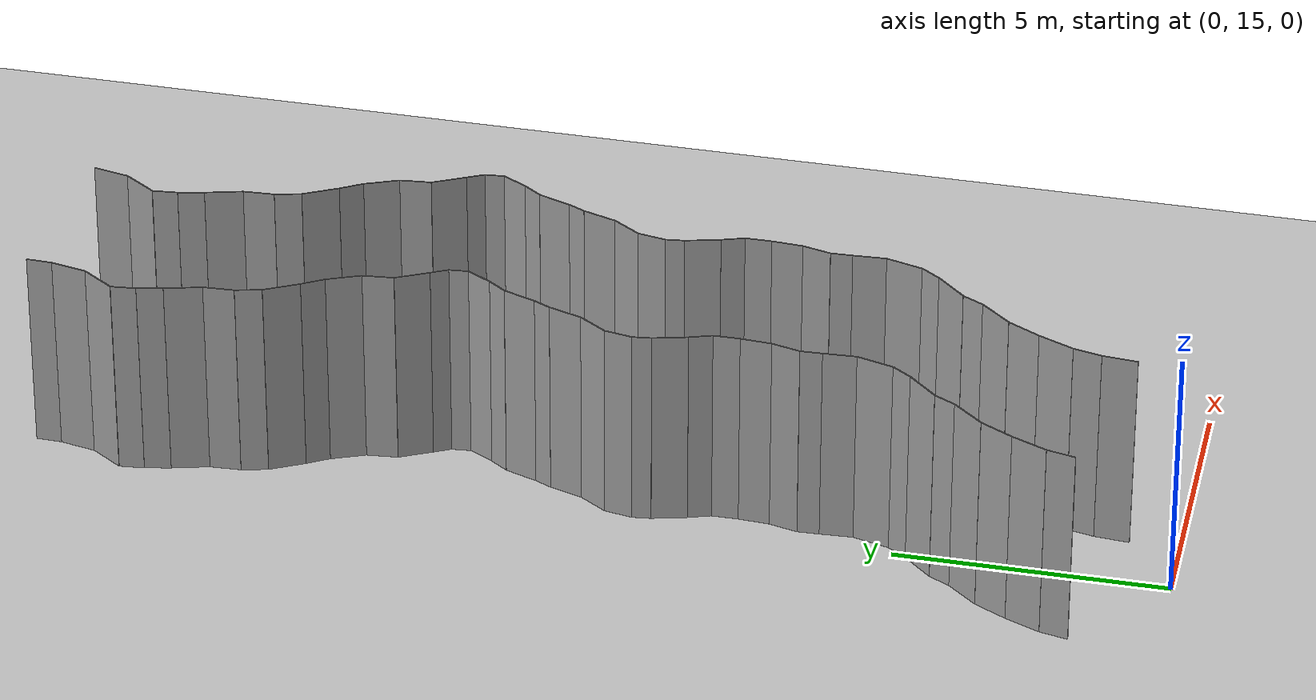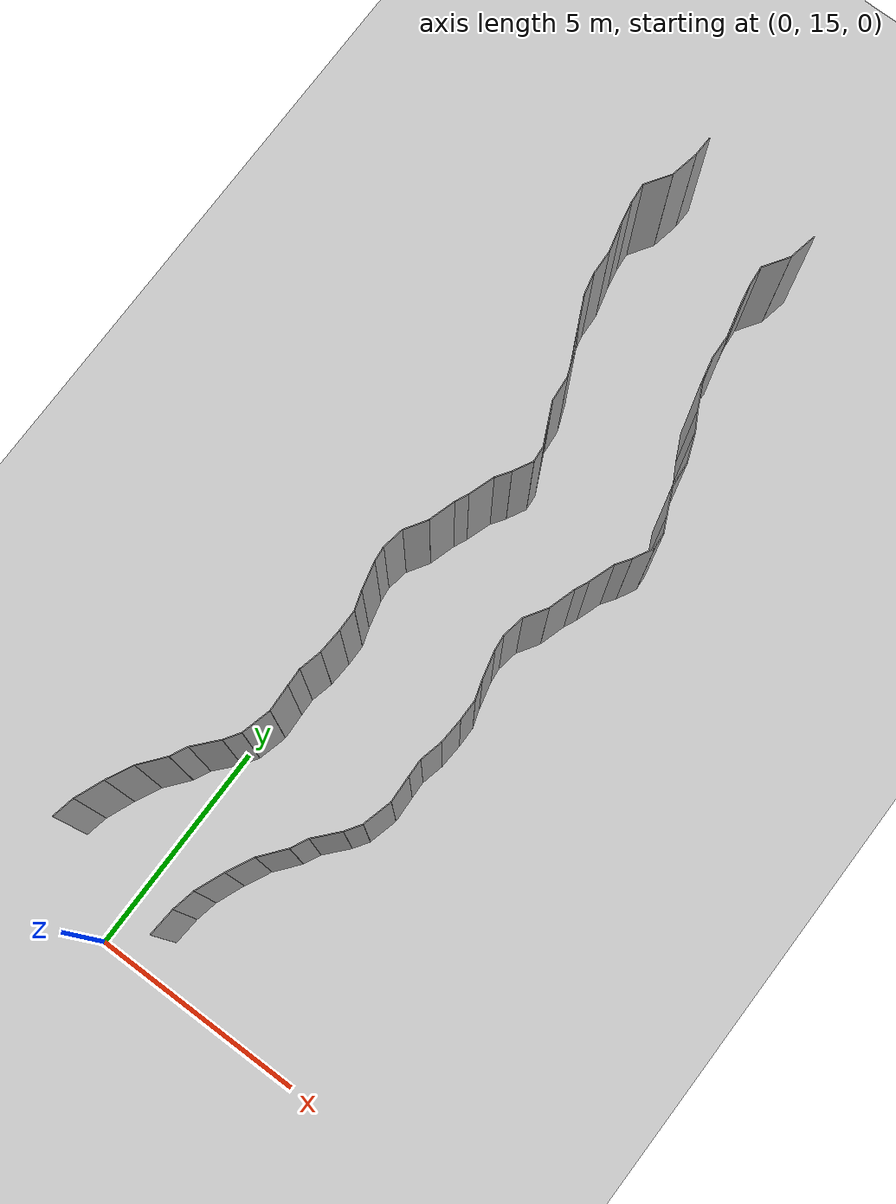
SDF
<sdf version="1.6">
 <world name="default">
  <model name="ground_plane">
   <static>1</static>
   <link name="link">
    <collision name="collision">
     <geometry><plane><normal>0 0 1</normal><size>200 200</size></plane></geometry>
     <surface><friction><ode><mu>100</mu><mu2>50</mu2></ode></friction></surface>
    </collision>
    <visual name="visual">
     <cast_shadows>0</cast_shadows>
     <geometry><plane><normal>0 0 1</normal><size>200 200</size></plane></geometry>
     <material>
      <script><uri>file://media/materials/scripts/gazebo.material</uri><name>Gazebo/Grey</name></script>
     </material>
    </visual>
   </link>
   <pose>0 100 0 0 -0 0</pose>
  </model>
  <model name="wall_73">
   <static>1</static>
   <pose>1.236619436810946 16.24686806776108 2 0 0 -0.07662111483931414</pose>
   <link name="link">
    <collision name="collision"><geometry><box><size>0.02 0.652921871732 4</size></box></geometry></collision>
    <visual name="visual">
     <material>
      <script><name>Gazebo/Grey</name><uri>file://media/materials/scripts/gazebo.material</uri></script>
     </material>
     <geometry><box><size>0.02 0.652921871732 4</size></box></geometry>
    </visual>
   </link>
  </model>
  <model name="wall_74">
   <static>1</static>
   <pose>-1.6850619614783182 16.833717161056516 2 0 0 -0.20129269610426137</pose>
   <link name="link">
    <collision name="collision"><geometry><box><size>0.02 0.533463149164 4</size></box></geometry></collision>
    <visual name="visual">
     <material>
      <script><name>Gazebo/Grey</name><uri>file://media/materials/scripts/gazebo.material</uri></script>
     </material>
     <geometry><box><size>0.02 0.533463149164 4</size></box></geometry>
    </visual>
   </link>
  </model>
  <model name="wall_75">
   <static>1</static>
   <pose>1.3149380385216818 16.833717161056516 2 0 0 -0.20129269610426137</pose>
   <link name="link">
    <collision name="collision"><geometry><box><size>0.02 0.533463149164 4</size></box></geometry></collision>
    <visual name="visual">
     <material>
      <script><name>Gazebo/Grey</name><uri>file://media/materials/scripts/gazebo.material</uri></script>
     </material>
     <geometry><box><size>0.02 0.533463149164 4</size></box></geometry>
    </visual>
   </link>
  </model>
  <model name="wall_76">
   <static>1</static>
   <pose>-1.5027451103024327 17.417432504195393 2 0 0 -0.3806129050042537</pose>
   <link name="link">
    <collision name="collision"><geometry><box><size>0.02 0.694434451404 4</size></box></geometry></collision>
    <visual name="visual">
     <material>
      <script><name>Gazebo/Grey</name><uri>file://media/materials/scripts/gazebo.material</uri></script>
     </material>
     <geometry><box><size>0.02 0.694434451404 4</size></box></geometry>
    </visual>
   </link>
  </model>
  <model name="wall_77">
   <static>1</static>
   <pose>1.4972548896975673 17.417432504195393 2 0 0 -0.3806129050042537</pose>
   <link name="link">
    <collision name="collision"><geometry><box><size>0.02 0.694434451404 4</size></box></geometry></collision>
    <visual name="visual">
     <material>
      <script><name>Gazebo/Grey</name><uri>file://media/materials/scripts/gazebo.material</uri></script>
     </material>
     <geometry><box><size>0.02 0.694434451404 4</size></box></geometry>
    </visual>
   </link>
  </model>
  <model name="wall_78">
   <static>1</static>
   <pose>-1.2288939563879646 18.032982774155506 2 0 0 -0.4589243876462619</pose>
   <link name="link">
    <collision name="collision"><geometry><box><size>0.02 0.654035165045 4</size></box></geometry></collision>
    <visual name="visual">
     <material>
      <script><name>Gazebo/Grey</name><uri>file://media/materials/scripts/gazebo.material</uri></script>
     </material>
     <geometry><box><size>0.02 0.654035165045 4</size></box></geometry>
    </visual>
   </link>
  </model>
  <model name="wall_79">
   <static>1</static>
   <pose>1.7711060436120354 18.032982774155506 2 0 0 -0.4589243876462619</pose>
   <link name="link">
    <collision name="collision"><geometry><box><size>0.02 0.654035165045 4</size></box></geometry></collision>
    <visual name="visual">
     <material>
      <script><name>Gazebo/Grey</name><uri>file://media/materials/scripts/gazebo.material</uri></script>
     </material>
     <geometry><box><size>0.02 0.654035165045 4</size></box></geometry>
    </visual>
   </link>
  </model>
  <model name="wall_80">
   <static>1</static>
   <pose>-0.8682462791823895 18.59495210912304 2 0 0 -0.676447640594913</pose>
   <link name="link">
    <collision name="collision"><geometry><box><size>0.02 0.689376525945 4</size></box></geometry></collision>
    <visual name="visual">
     <material>
      <script><name>Gazebo/Grey</name><uri>file://media/materials/scripts/gazebo.material</uri></script>
     </material>
     <geometry><box><size>0.02 0.689376525945 4</size></box></geometry>
    </visual>
   </link>
  </model>
  <model name="wall_81">
   <static>1</static>
   <pose>2.1317537208176107 18.59495210912304 2 0 0 -0.676447640594913</pose>
   <link name="link">
    <collision name="collision"><geometry><box><size>0.02 0.689376525945 4</size></box></geometry></collision>
    <visual name="visual">
     <material>
      <script><name>Gazebo/Grey</name><uri>file://media/materials/scripts/gazebo.material</uri></script>
     </material>
     <geometry><box><size>0.02 0.689376525945 4</size></box></geometry>
    </visual>
   </link>
  </model>
  <model name="wall_82">
   <static>1</static>
   <pose>-0.5602530816631973 19.05375764423347 2 0 0 -0.45179214773856896</pose>
   <link name="link">
    <collision name="collision"><geometry><box><size>0.02 0.422416941302 4</size></box></geometry></collision>
    <visual name="visual">
     <material>
      <script><name>Gazebo/Grey</name><uri>file://media/materials/scripts/gazebo.material</uri></script>
     </material>
     <geometry><box><size>0.02 0.422416941302 4</size></box></geometry>
    </visual>
   </link>
  </model>
  <model name="wall_83">
   <static>1</static>
   <pose>2.4397469183368026 19.05375764423347 2 0 0 -0.45179214773856896</pose>
   <link name="link">
    <collision name="collision"><geometry><box><size>0.02 0.422416941302 4</size></box></geometry></collision>
    <visual name="visual">
     <material>
      <script><name>Gazebo/Grey</name><uri>file://media/materials/scripts/gazebo.material</uri></script>
     </material>
     <geometry><box><size>0.02 0.422416941302 4</size></box></geometry>
    </visual>
   </link>
  </model>
  <model name="wall_84">
   <static>1</static>
   <pose>-0.24339477270567478 19.49897368563384 2 0 0 -0.7218185902400076</pose>
   <link name="link">
    <collision name="collision"><geometry><box><size>0.02 0.679981665009 4</size></box></geometry></collision>
    <visual name="visual">
     <material>
      <script><name>Gazebo/Grey</name><uri>file://media/materials/scripts/gazebo.material</uri></script>
     </material>
     <geometry><box><size>0.02 0.679981665009 4</size></box></geometry>
    </visual>
   </link>
  </model>
  <model name="wall_85">
   <static>1</static>
   <pose>2.756605227294325 19.49897368563384 2 0 0 -0.7218185902400076</pose>
   <link name="link">
    <collision name="collision"><geometry><box><size>0.02 0.679981665009 4</size></box></geometry></collision>
    <visual name="visual">
     <material>
      <script><name>Gazebo/Grey</name><uri>file://media/materials/scripts/gazebo.material</uri></script>
     </material>
     <geometry><box><size>0.02 0.679981665009 4</size></box></geometry>
    </visual>
   </link>
  </model>
  <model name="wall_86">
   <static>1</static>
   <pose>0.09290963431255042 19.926337376304538 2 0 0 -0.575345957879111</pose>
   <link name="link">
    <collision name="collision"><geometry><box><size>0.02 0.410402656872 4</size></box></geometry></collision>
    <visual name="visual">
     <material>
      <script><name>Gazebo/Grey</name><uri>file://media/materials/scripts/gazebo.material</uri></script>
     </material>
     <geometry><box><size>0.02 0.410402656872 4</size></box></geometry>
    </visual>
   </link>
  </model>
  <model name="wall_87">
   <static>1</static>
   <pose>3.0929096343125506 19.926337376304538 2 0 0 -0.575345957879111</pose>
   <link name="link">
    <collision name="collision"><geometry><box><size>0.02 0.410402656872 4</size></box></geometry></collision>
    <visual name="visual">
     <material>
      <script><name>Gazebo/Grey</name><uri>file://media/materials/scripts/gazebo.material</uri></script>
     </material>
     <geometry><box><size>0.02 0.410402656872 4</size></box></geometry>
    </visual>
   </link>
  </model>
  <model name="wall_88">
   <static>1</static>
   <pose>0.2908948593603694 20.435092098052486 2 0 0 -0.2510721438512877</pose>
   <link name="link">
    <collision name="collision"><geometry><box><size>0.02 0.69496957902 4</size></box></geometry></collision>
    <visual name="visual">
     <material>
      <script><name>Gazebo/Grey</name><uri>file://media/materials/scripts/gazebo.material</uri></script>
     </material>
     <geometry><box><size>0.02 0.69496957902 4</size></box></geometry>
    </visual>
   </link>
  </model>
  <model name="wall_89">
   <static>1</static>
   <pose>3.2908948593603693 20.435092098052486 2 0 0 -0.2510721438512877</pose>
   <link name="link">
    <collision name="collision"><geometry><box><size>0.02 0.69496957902 4</size></box></geometry></collision>
    <visual name="visual">
     <material>
      <script><name>Gazebo/Grey</name><uri>file://media/materials/scripts/gazebo.material</uri></script>
     </material>
     <geometry><box><size>0.02 0.69496957902 4</size></box></geometry>
    </visual>
   </link>
  </model>
  <model name="wall_90">
   <static>1</static>
   <pose>0.36312713648674444 21.076874312848084 2 0 0 0.04616022695927666</pose>
   <link name="link">
    <collision name="collision"><geometry><box><size>0.02 0.611035372541 4</size></box></geometry></collision>
    <visual name="visual">
     <material>
      <script><name>Gazebo/Grey</name><uri>file://media/materials/scripts/gazebo.material</uri></script>
     </material>
     <geometry><box><size>0.02 0.611035372541 4</size></box></geometry>
    </visual>
   </link>
  </model>
  <model name="wall_91">
   <static>1</static>
   <pose>3.3631271364867446 21.076874312848084 2 0 0 0.04616022695927666</pose>
   <link name="link">
    <collision name="collision"><geometry><box><size>0.02 0.611035372541 4</size></box></geometry></collision>
    <visual name="visual">
     <material>
      <script><name>Gazebo/Grey</name><uri>file://media/materials/scripts/gazebo.material</uri></script>
     </material>
     <geometry><box><size>0.02 0.611035372541 4</size></box></geometry>
    </visual>
   </link>
  </model>
  <model name="wall_92">
   <static>1</static>
   <pose>0.34215950551542296 21.582013331725417 2 0 0 0.03434499914582238</pose>
   <link name="link">
    <collision name="collision"><geometry><box><size>0.02 0.400129505475 4</size></box></geometry></collision>
    <visual name="visual">
     <material>
      <script><name>Gazebo/Grey</name><uri>file://media/materials/scripts/gazebo.material</uri></script>
     </material>
     <geometry><box><size>0.02 0.400129505475 4</size></box></geometry>
    </visual>
   </link>
  </model>
  <model name="wall_93">
   <static>1</static>
   <pose>3.342159505515423 21.582013331725417 2 0 0 0.03434499914582238</pose>
   <link name="link">
    <collision name="collision"><geometry><box><size>0.02 0.400129505475 4</size></box></geometry></collision>
    <visual name="visual">
     <material>
      <script><name>Gazebo/Grey</name><uri>file://media/materials/scripts/gazebo.material</uri></script>
     </material>
     <geometry><box><size>0.02 0.400129505475 4</size></box></geometry>
    </visual>
   </link>
  </model>
  <model name="wall_94">
   <static>1</static>
   <pose>0.39580625724243496 22.043670130056444 2 0 0 -0.22724140612445018</pose>
   <link name="link">
    <collision name="collision"><geometry><box><size>0.02 0.537231427644 4</size></box></geometry></collision>
    <visual name="visual">
     <material>
      <script><name>Gazebo/Grey</name><uri>file://media/materials/scripts/gazebo.material</uri></script>
     </material>
     <geometry><box><size>0.02 0.537231427644 4</size></box></geometry>
    </visual>
   </link>
  </model>
  <model name="wall_95">
   <static>1</static>
   <pose>3.395806257242435 22.043670130056444 2 0 0 -0.22724140612445018</pose>
   <link name="link">
    <collision name="collision"><geometry><box><size>0.02 0.537231427644 4</size></box></geometry></collision>
    <visual name="visual">
     <material>
      <script><name>Gazebo/Grey</name><uri>file://media/materials/scripts/gazebo.material</uri></script>
     </material>
     <geometry><box><size>0.02 0.537231427644 4</size></box></geometry>
    </visual>
   </link>
  </model>
  <model name="wall_96">
   <static>1</static>
   <pose>0.47292743298358336 22.59151135520909 2 0 0 -0.05796623920278372</pose>
   <link name="link">
    <collision name="collision"><geometry><box><size>0.02 0.573225163115 4</size></box></geometry></collision>
    <visual name="visual">
     <material>
      <script><name>Gazebo/Grey</name><uri>file://media/materials/scripts/gazebo.material</uri></script>
     </material>
     <geometry><box><size>0.02 0.573225163115 4</size></box></geometry>
    </visual>
   </link>
  </model>
  <model name="wall_97">
   <static>1</static>
   <pose>3.4729274329835835 22.59151135520909 2 0 0 -0.05796623920278372</pose>
   <link name="link">
    <collision name="collision"><geometry><box><size>0.02 0.573225163115 4</size></box></geometry></collision>
    <visual name="visual">
     <material>
      <script><name>Gazebo/Grey</name><uri>file://media/materials/scripts/gazebo.material</uri></script>
     </material>
     <geometry><box><size>0.02 0.573225163115 4</size></box></geometry>
    </visual>
   </link>
  </model>
  <model name="wall_98">
   <static>1</static>
   <pose>0.4869234868872384 23.121474311820876 2 0 0 0.010697530162599417</pose>
   <link name="link">
    <collision name="collision"><geometry><box><size>0.02 0.487691427826 4</size></box></geometry></collision>
    <visual name="visual">
     <material>
      <script><name>Gazebo/Grey</name><uri>file://media/materials/scripts/gazebo.material</uri></script>
     </material>
     <geometry><box><size>0.02 0.487691427826 4</size></box></geometry>
    </visual>
   </link>
  </model>
  <model name="wall_99">
   <static>1</static>
   <pose>3.4869234868872385 23.121474311820876 2 0 0 0.010697530162599417</pose>
   <link name="link">
    <collision name="collision"><geometry><box><size>0.02 0.487691427826 4</size></box></geometry></collision>
    <visual name="visual">
     <material>
      <script><name>Gazebo/Grey</name><uri>file://media/materials/scripts/gazebo.material</uri></script>
     </material>
     <geometry><box><size>0.02 0.487691427826 4</size></box></geometry>
    </visual>
   </link>
  </model>
  <model name="wall_100">
   <static>1</static>
   <pose>0.41763871543381453 23.57182953600689 2 0 0 0.3122868351081051</pose>
   <link name="link">
    <collision name="collision"><geometry><box><size>0.02 0.434039934479 4</size></box></geometry></collision>
    <visual name="visual">
     <material>
      <script><name>Gazebo/Grey</name><uri>file://media/materials/scripts/gazebo.material</uri></script>
     </material>
     <geometry><box><size>0.02 0.434039934479 4</size></box></geometry>
    </visual>
   </link>
  </model>
  <model name="wall_101">
   <static>1</static>
   <pose>3.4176387154338146 23.57182953600689 2 0 0 0.3122868351081051</pose>
   <link name="link">
    <collision name="collision"><geometry><box><size>0.02 0.434039934479 4</size></box></geometry></collision>
    <visual name="visual">
     <material>
      <script><name>Gazebo/Grey</name><uri>file://media/materials/scripts/gazebo.material</uri></script>
     </material>
     <geometry><box><size>0.02 0.434039934479 4</size></box></geometry>
    </visual>
   </link>
  </model>
  <model name="wall_102">
   <static>1</static>
   <pose>0.27321010519076544 24.09410271863403 2 0 0 0.24144306569000376</pose>
   <link name="link">
    <collision name="collision"><geometry><box><size>0.02 0.650363933224 4</size></box></geometry></collision>
    <visual name="visual">
     <material>
      <script><name>Gazebo/Grey</name><uri>file://media/materials/scripts/gazebo.material</uri></script>
     </material>
     <geometry><box><size>0.02 0.650363933224 4</size></box></geometry>
    </visual>
   </link>
  </model>
  <model name="wall_103">
   <static>1</static>
   <pose>3.2732101051907656 24.09410271863403 2 0 0 0.24144306569000376</pose>
   <link name="link">
    <collision name="collision"><geometry><box><size>0.02 0.650363933224 4</size></box></geometry></collision>
    <visual name="visual">
     <material>
      <script><name>Gazebo/Grey</name><uri>file://media/materials/scripts/gazebo.material</uri></script>
     </material>
     <geometry><box><size>0.02 0.650363933224 4</size></box></geometry>
    </visual>
   </link>
  </model>
  <model name="wall_104">
   <static>1</static>
   <pose>0.1770207866452207 24.581464356746835 2 0 0 0.10702366258992727</pose>
   <link name="link">
    <collision name="collision"><geometry><box><size>0.02 0.345198915252 4</size></box></geometry></collision>
    <visual name="visual">
     <material>
      <script><name>Gazebo/Grey</name><uri>file://media/materials/scripts/gazebo.material</uri></script>
     </material>
     <geometry><box><size>0.02 0.345198915252 4</size></box></geometry>
    </visual>
   </link>
  </model>
  <model name="wall_105">
   <static>1</static>
   <pose>3.1770207866452207 24.581464356746835 2 0 0 0.10702366258992727</pose>
   <link name="link">
    <collision name="collision"><geometry><box><size>0.02 0.345198915252 4</size></box></geometry></collision>
    <visual name="visual">
     <material>
      <script><name>Gazebo/Grey</name><uri>file://media/materials/scripts/gazebo.material</uri></script>
     </material>
     <geometry><box><size>0.02 0.345198915252 4</size></box></geometry>
    </visual>
   </link>
  </model>
  <model name="wall_106">
   <static>1</static>
   <pose>0.20179245174249685 25.009309118994796 2 0 0 -0.16705872907479258</pose>
   <link name="link">
    <collision name="collision"><geometry><box><size>0.02 0.519700904918 4</size></box></geometry></collision>
    <visual name="visual">
     <material>
      <script><name>Gazebo/Grey</name><uri>file://media/materials/scripts/gazebo.material</uri></script>
     </material>
     <geometry><box><size>0.02 0.519700904918 4</size></box></geometry>
    </visual>
   </link>
  </model>
  <model name="wall_107">
   <static>1</static>
   <pose>3.201792451742497 25.009309118994796 2 0 0 -0.16705872907479258</pose>
   <link name="link">
    <collision name="collision"><geometry><box><size>0.02 0.519700904918 4</size></box></geometry></collision>
    <visual name="visual">
     <material>
      <script><name>Gazebo/Grey</name><uri>file://media/materials/scripts/gazebo.material</uri></script>
     </material>
     <geometry><box><size>0.02 0.519700904918 4</size></box></geometry>
    </visual>
   </link>
  </model>
  <model name="wall_108">
   <static>1</static>
   <pose>0.39794630489059224 25.508593052734906 2 0 0 -0.5616653013596633</pose>
   <link name="link">
    <collision name="collision"><geometry><box><size>0.02 0.574338116542 4</size></box></geometry></collision>
    <visual name="visual">
     <material>
      <script><name>Gazebo/Grey</name><uri>file://media/materials/scripts/gazebo.material</uri></script>
     </material>
     <geometry><box><size>0.02 0.574338116542 4</size></box></geometry>
    </visual>
   </link>
  </model>
  <model name="wall_109">
   <static>1</static>
   <pose>3.397946304890592 25.508593052734906 2 0 0 -0.5616653013596633</pose>
   <link name="link">
    <collision name="collision"><geometry><box><size>0.02 0.574338116542 4</size></box></geometry></collision>
    <visual name="visual">
     <material>
      <script><name>Gazebo/Grey</name><uri>file://media/materials/scripts/gazebo.material</uri></script>
     </material>
     <geometry><box><size>0.02 0.574338116542 4</size></box></geometry>
    </visual>
   </link>
  </model>
  <model name="wall_110">
   <static>1</static>
   <pose>0.6420178207128212 26.053993255056557 2 0 0 -0.292735511420966</pose>
   <link name="link">
    <collision name="collision"><geometry><box><size>0.02 0.631566276482 4</size></box></geometry></collision>
    <visual name="visual">
     <material>
      <script><name>Gazebo/Grey</name><uri>file://media/materials/scripts/gazebo.material</uri></script>
     </material>
     <geometry><box><size>0.02 0.631566276482 4</size></box></geometry>
    </visual>
   </link>
  </model>
  <model name="wall_111">
   <static>1</static>
   <pose>3.6420178207128213 26.053993255056557 2 0 0 -0.292735511420966</pose>
   <link name="link">
    <collision name="collision"><geometry><box><size>0.02 0.631566276482 4</size></box></geometry></collision>
    <visual name="visual">
     <material>
      <script><name>Gazebo/Grey</name><uri>file://media/materials/scripts/gazebo.material</uri></script>
     </material>
     <geometry><box><size>0.02 0.631566276482 4</size></box></geometry>
    </visual>
   </link>
  </model>
  <model name="wall_112">
   <static>1</static>
   <pose>0.8004901112430766 26.505998379137253 2 0 0 -0.4228582326538245</pose>
   <link name="link">
    <collision name="collision"><geometry><box><size>0.02 0.328221893129 4</size></box></geometry></collision>
    <visual name="visual">
     <material>
      <script><name>Gazebo/Grey</name><uri>file://media/materials/scripts/gazebo.material</uri></script>
     </material>
     <geometry><box><size>0.02 0.328221893129 4</size></box></geometry>
    </visual>
   </link>
  </model>
  <model name="wall_113">
   <static>1</static>
   <pose>3.8004901112430765 26.505998379137253 2 0 0 -0.4228582326538245</pose>
   <link name="link">
    <collision name="collision"><geometry><box><size>0.02 0.328221893129 4</size></box></geometry></collision>
    <visual name="visual">
     <material>
      <script><name>Gazebo/Grey</name><uri>file://media/materials/scripts/gazebo.material</uri></script>
     </material>
     <geometry><box><size>0.02 0.328221893129 4</size></box></geometry>
    </visual>
   </link>
  </model>
  <model name="wall_114">
   <static>1</static>
   <pose>0.9665948800777707 26.94949016160263 2 0 0 -0.32424027630079916</pose>
   <link name="link">
    <collision name="collision"><geometry><box><size>0.02 0.619976640576 4</size></box></geometry></collision>
    <visual name="visual">
     <material>
      <script><name>Gazebo/Grey</name><uri>file://media/materials/scripts/gazebo.material</uri></script>
     </material>
     <geometry><box><size>0.02 0.619976640576 4</size></box></geometry>
    </visual>
   </link>
  </model>
  <model name="wall_115">
   <static>1</static>
   <pose>3.966594880077771 26.94949016160263 2 0 0 -0.32424027630079916</pose>
   <link name="link">
    <collision name="collision"><geometry><box><size>0.02 0.619976640576 4</size></box></geometry></collision>
    <visual name="visual">
     <material>
      <script><name>Gazebo/Grey</name><uri>file://media/materials/scripts/gazebo.material</uri></script>
     </material>
     <geometry><box><size>0.02 0.619976640576 4</size></box></geometry>
    </visual>
   </link>
  </model>
  <model name="wall_116">
   <static>1</static>
   <pose>1.1719738727820164 27.39972058188992 2 0 0 -0.5983642802149075</pose>
   <link name="link">
    <collision name="collision"><geometry><box><size>0.02 0.378561245773 4</size></box></geometry></collision>
    <visual name="visual">
     <material>
      <script><name>Gazebo/Grey</name><uri>file://media/materials/scripts/gazebo.material</uri></script>
     </material>
     <geometry><box><size>0.02 0.378561245773 4</size></box></geometry>
    </visual>
   </link>
  </model>
  <model name="wall_117">
   <static>1</static>
   <pose>4.171973872782017 27.39972058188992 2 0 0 -0.5983642802149075</pose>
   <link name="link">
    <collision name="collision"><geometry><box><size>0.02 0.378561245773 4</size></box></geometry></collision>
    <visual name="visual">
     <material>
      <script><name>Gazebo/Grey</name><uri>file://media/materials/scripts/gazebo.material</uri></script>
     </material>
     <geometry><box><size>0.02 0.378561245773 4</size></box></geometry>
    </visual>
   </link>
  </model>
  <model name="wall_118">
   <static>1</static>
   <pose>1.3935832611979622 27.77501597259886 2 0 0 -0.48368438871650826</pose>
   <link name="link">
    <collision name="collision"><geometry><box><size>0.02 0.494530270719 4</size></box></geometry></collision>
    <visual name="visual">
     <material>
      <script><name>Gazebo/Grey</name><uri>file://media/materials/scripts/gazebo.material</uri></script>
     </material>
     <geometry><box><size>0.02 0.494530270719 4</size></box></geometry>
    </visual>
   </link>
  </model>
  <model name="wall_119">
   <static>1</static>
   <pose>4.393583261197962 27.77501597259886 2 0 0 -0.48368438871650826</pose>
   <link name="link">
    <collision name="collision"><geometry><box><size>0.02 0.494530270719 4</size></box></geometry></collision>
    <visual name="visual">
     <material>
      <script><name>Gazebo/Grey</name><uri>file://media/materials/scripts/gazebo.material</uri></script>
     </material>
     <geometry><box><size>0.02 0.494530270719 4</size></box></geometry>
    </visual>
   </link>
  </model>
  <model name="wall_120">
   <static>1</static>
   <pose>1.494068112313641 28.17140271666273 2 0 0 0.08153980401733942</pose>
   <link name="link">
    <collision name="collision"><geometry><box><size>0.02 0.356155341325 4</size></box></geometry></collision>
    <visual name="visual">
     <material>
      <script><name>Gazebo/Grey</name><uri>file://media/materials/scripts/gazebo.material</uri></script>
     </material>
     <geometry><box><size>0.02 0.356155341325 4</size></box></geometry>
    </visual>
   </link>
  </model>
  <model name="wall_121">
   <static>1</static>
   <pose>4.4940681123136414 28.17140271666273 2 0 0 0.08153980401733942</pose>
   <link name="link">
    <collision name="collision"><geometry><box><size>0.02 0.356155341325 4</size></box></geometry></collision>
    <visual name="visual">
     <material>
      <script><name>Gazebo/Grey</name><uri>file://media/materials/scripts/gazebo.material</uri></script>
     </material>
     <geometry><box><size>0.02 0.356155341325 4</size></box></geometry>
    </visual>
   </link>
  </model>
  <model name="wall_122">
   <static>1</static>
   <pose>1.4049746301586368 28.503241432420392 2 0 0 0.45014858887263043</pose>
   <link name="link">
    <collision name="collision"><geometry><box><size>0.02 0.342860328408 4</size></box></geometry></collision>
    <visual name="visual">
     <material>
      <script><name>Gazebo/Grey</name><uri>file://media/materials/scripts/gazebo.material</uri></script>
     </material>
     <geometry><box><size>0.02 0.342860328408 4</size></box></geometry>
    </visual>
   </link>
  </model>
  <model name="wall_123">
   <static>1</static>
   <pose>4.4049746301586366 28.503241432420392 2 0 0 0.45014858887263043</pose>
   <link name="link">
    <collision name="collision"><geometry><box><size>0.02 0.342860328408 4</size></box></geometry></collision>
    <visual name="visual">
     <material>
      <script><name>Gazebo/Grey</name><uri>file://media/materials/scripts/gazebo.material</uri></script>
     </material>
     <geometry><box><size>0.02 0.342860328408 4</size></box></geometry>
    </visual>
   </link>
  </model>
  <model name="wall_124">
   <static>1</static>
   <pose>1.1909984426705622 28.95338267213018 2 0 0 0.44037508769189726</pose>
   <link name="link">
    <collision name="collision"><geometry><box><size>0.02 0.653971249992 4</size></box></geometry></collision>
    <visual name="visual">
     <material>
      <script><name>Gazebo/Grey</name><uri>file://media/materials/scripts/gazebo.material</uri></script>
     </material>
     <geometry><box><size>0.02 0.653971249992 4</size></box></geometry>
    </visual>
   </link>
  </model>
  <model name="wall_125">
   <static>1</static>
   <pose>4.190998442670562 28.95338267213018 2 0 0 0.44037508769189726</pose>
   <link name="link">
    <collision name="collision"><geometry><box><size>0.02 0.653971249992 4</size></box></geometry></collision>
    <visual name="visual">
     <material>
      <script><name>Gazebo/Grey</name><uri>file://media/materials/scripts/gazebo.material</uri></script>
     </material>
     <geometry><box><size>0.02 0.653971249992 4</size></box></geometry>
    </visual>
   </link>
  </model>
  <model name="wall_126">
   <static>1</static>
   <pose>1.0263125600911835 29.53572669517105 2 0 0 0.0880577060943523</pose>
   <link name="link">
    <collision name="collision"><geometry><box><size>0.02 0.575340191876 4</size></box></geometry></collision>
    <visual name="visual">
     <material>
      <script><name>Gazebo/Grey</name><uri>file://media/materials/scripts/gazebo.material</uri></script>
     </material>
     <geometry><box><size>0.02 0.575340191876 4</size></box></geometry>
    </visual>
   </link>
  </model>
  <model name="wall_127">
   <static>1</static>
   <pose>4.026312560091183 29.53572669517105 2 0 0 0.0880577060943523</pose>
   <link name="link">
    <collision name="collision"><geometry><box><size>0.02 0.575340191876 4</size></box></geometry></collision>
    <visual name="visual">
     <material>
      <script><name>Gazebo/Grey</name><uri>file://media/materials/scripts/gazebo.material</uri></script>
     </material>
     <geometry><box><size>0.02 0.575340191876 4</size></box></geometry>
    </visual>
   </link>
  </model>
  <model name="wall_128">
   <static>1</static>
   <pose>0.880943107414229 30.130155944894753 2 0 0 0.3718556368209094</pose>
   <link name="link">
    <collision name="collision"><geometry><box><size>0.02 0.660918146176 4</size></box></geometry></collision>
    <visual name="visual">
     <material>
      <script><name>Gazebo/Grey</name><uri>file://media/materials/scripts/gazebo.material</uri></script>
     </material>
     <geometry><box><size>0.02 0.660918146176 4</size></box></geometry>
    </visual>
   </link>
  </model>
  <model name="wall_129">
   <static>1</static>
   <pose>3.880943107414229 30.130155944894753 2 0 0 0.3718556368209094</pose>
   <link name="link">
    <collision name="collision"><geometry><box><size>0.02 0.660918146176 4</size></box></geometry></collision>
    <visual name="visual">
     <material>
      <script><name>Gazebo/Grey</name><uri>file://media/materials/scripts/gazebo.material</uri></script>
     </material>
     <geometry><box><size>0.02 0.660918146176 4</size></box></geometry>
    </visual>
   </link>
  </model>
  <model name="wall_130">
   <static>1</static>
   <pose>0.6486427443950515 30.637101775851807 2 0 0 0.5133494496571442</pose>
   <link name="link">
    <collision name="collision"><geometry><box><size>0.02 0.457056713736 4</size></box></geometry></collision>
    <visual name="visual">
     <material>
      <script><name>Gazebo/Grey</name><uri>file://media/materials/scripts/gazebo.material</uri></script>
     </material>
     <geometry><box><size>0.02 0.457056713736 4</size></box></geometry>
    </visual>
   </link>
  </model>
  <model name="wall_131">
   <static>1</static>
   <pose>3.6486427443950515 30.637101775851807 2 0 0 0.5133494496571442</pose>
   <link name="link">
    <collision name="collision"><geometry><box><size>0.02 0.457056713736 4</size></box></geometry></collision>
    <visual name="visual">
     <material>
      <script><name>Gazebo/Grey</name><uri>file://media/materials/scripts/gazebo.material</uri></script>
     </material>
     <geometry><box><size>0.02 0.457056713736 4</size></box></geometry>
    </visual>
   </link>
  </model>
  <model name="wall_132">
   <static>1</static>
   <pose>0.38348819864962436 31.147191226967024 2 0 0 0.45697924299832865</pose>
   <link name="link">
    <collision name="collision"><geometry><box><size>0.02 0.693160294213 4</size></box></geometry></collision>
    <visual name="visual">
     <material>
      <script><name>Gazebo/Grey</name><uri>file://media/materials/scripts/gazebo.material</uri></script>
     </material>
     <geometry><box><size>0.02 0.693160294213 4</size></box></geometry>
    </visual>
   </link>
  </model>
  <model name="wall_133">
   <static>1</static>
   <pose>3.3834881986496246 31.147191226967024 2 0 0 0.45697924299832865</pose>
   <link name="link">
    <collision name="collision"><geometry><box><size>0.02 0.693160294213 4</size></box></geometry></collision>
    <visual name="visual">
     <material>
      <script><name>Gazebo/Grey</name><uri>file://media/materials/scripts/gazebo.material</uri></script>
     </material>
     <geometry><box><size>0.02 0.693160294213 4</size></box></geometry>
    </visual>
   </link>
  </model>
  <model name="wall_134">
   <static>1</static>
   <pose>0.17559672229174222 31.69918242500231 2 0 0 0.22426529201947096</pose>
   <link name="link">
    <collision name="collision"><geometry><box><size>0.02 0.494326696151 4</size></box></geometry></collision>
    <visual name="visual">
     <material>
      <script><name>Gazebo/Grey</name><uri>file://media/materials/scripts/gazebo.material</uri></script>
     </material>
     <geometry><box><size>0.02 0.494326696151 4</size></box></geometry>
    </visual>
   </link>
  </model>
  <model name="wall_135">
   <static>1</static>
   <pose>3.175596722291742 31.69918242500231 2 0 0 0.22426529201947096</pose>
   <link name="link">
    <collision name="collision"><geometry><box><size>0.02 0.494326696151 4</size></box></geometry></collision>
    <visual name="visual">
     <material>
      <script><name>Gazebo/Grey</name><uri>file://media/materials/scripts/gazebo.material</uri></script>
     </material>
     <geometry><box><size>0.02 0.494326696151 4</size></box></geometry>
    </visual>
   </link>
  </model>
  <model name="wall_136">
   <static>1</static>
   <pose>0.10770240860032003 32.225322400339195 2 0 0 0.04530265471038662</pose>
   <link name="link">
    <collision name="collision"><geometry><box><size>0.02 0.570918057393 4</size></box></geometry></collision>
    <visual name="visual">
     <material>
      <script><name>Gazebo/Grey</name><uri>file://media/materials/scripts/gazebo.material</uri></script>
     </material>
     <geometry><box><size>0.02 0.570918057393 4</size></box></geometry>
    </visual>
   </link>
  </model>
  <model name="wall_137">
   <static>1</static>
   <pose>3.10770240860032 32.225322400339195 2 0 0 0.04530265471038662</pose>
   <link name="link">
    <collision name="collision"><geometry><box><size>0.02 0.570918057393 4</size></box></geometry></collision>
    <visual name="visual">
     <material>
      <script><name>Gazebo/Grey</name><uri>file://media/materials/scripts/gazebo.material</uri></script>
     </material>
     <geometry><box><size>0.02 0.570918057393 4</size></box></geometry>
    </visual>
   </link>
  </model>
  <model name="wall_138">
   <static>1</static>
   <pose>0.008375021337714686 32.84908639057468 2 0 0 0.24983789575151785</pose>
   <link name="link">
    <collision name="collision"><geometry><box><size>0.02 0.698894599304 4</size></box></geometry></collision>
    <visual name="visual">
     <material>
      <script><name>Gazebo/Grey</name><uri>file://media/materials/scripts/gazebo.material</uri></script>
     </material>
     <geometry><box><size>0.02 0.698894599304 4</size></box></geometry>
    </visual>
   </link>
  </model>
  <model name="wall_139">
   <static>1</static>
   <pose>3.0083750213377147 32.84908639057468 2 0 0 0.24983789575151785</pose>
   <link name="link">
    <collision name="collision"><geometry><box><size>0.02 0.698894599304 4</size></box></geometry></collision>
    <visual name="visual">
     <material>
      <script><name>Gazebo/Grey</name><uri>file://media/materials/scripts/gazebo.material</uri></script>
     </material>
     <geometry><box><size>0.02 0.698894599304 4</size></box></geometry>
    </visual>
   </link>
  </model>
  <model name="wall_140">
   <static>1</static>
   <pose>-0.1252510678698392 33.42531831360594 2 0 0 0.1961794088185408</pose>
   <link name="link">
    <collision name="collision"><geometry><box><size>0.02 0.484562829491 4</size></box></geometry></collision>
    <visual name="visual">
     <material>
      <script><name>Gazebo/Grey</name><uri>file://media/materials/scripts/gazebo.material</uri></script>
     </material>
     <geometry><box><size>0.02 0.484562829491 4</size></box></geometry>
    </visual>
   </link>
  </model>
  <model name="wall_141">
   <static>1</static>
   <pose>2.874748932130161 33.42531831360594 2 0 0 0.1961794088185408</pose>
   <link name="link">
    <collision name="collision"><geometry><box><size>0.02 0.484562829491 4</size></box></geometry></collision>
    <visual name="visual">
     <material>
      <script><name>Gazebo/Grey</name><uri>file://media/materials/scripts/gazebo.material</uri></script>
     </material>
     <geometry><box><size>0.02 0.484562829491 4</size></box></geometry>
    </visual>
   </link>
  </model>
  <model name="wall_142">
   <static>1</static>
   <pose>-0.19318935435246637 33.89116229041385 2 0 0 0.09051039015067068</pose>
   <link name="link">
    <collision name="collision"><geometry><box><size>0.02 0.458295714743 4</size></box></geometry></collision>
    <visual name="visual">
     <material>
      <script><name>Gazebo/Grey</name><uri>file://media/materials/scripts/gazebo.material</uri></script>
     </material>
     <geometry><box><size>0.02 0.458295714743 4</size></box></geometry>
    </visual>
   </link>
  </model>
  <model name="wall_143">
   <static>1</static>
   <pose>2.8068106456475337 33.89116229041385 2 0 0 0.09051039015067068</pose>
   <link name="link">
    <collision name="collision"><geometry><box><size>0.02 0.458295714743 4</size></box></geometry></collision>
    <visual name="visual">
     <material>
      <script><name>Gazebo/Grey</name><uri>file://media/materials/scripts/gazebo.material</uri></script>
     </material>
     <geometry><box><size>0.02 0.458295714743 4</size></box></geometry>
    </visual>
   </link>
  </model>
  <model name="wall_144">
   <static>1</static>
   <pose>-0.030789309239409007 34.397834001164355 2 0 0 -0.5816881297962356</pose>
   <link name="link">
    <collision name="collision"><geometry><box><size>0.02 0.666546288276 4</size></box></geometry></collision>
    <visual name="visual">
     <material>
      <script><name>Gazebo/Grey</name><uri>file://media/materials/scripts/gazebo.material</uri></script>
     </material>
     <geometry><box><size>0.02 0.666546288276 4</size></box></geometry>
    </visual>
   </link>
  </model>
  <model name="wall_145">
   <static>1</static>
   <pose>2.969210690760591 34.397834001164355 2 0 0 -0.5816881297962356</pose>
   <link name="link">
    <collision name="collision"><geometry><box><size>0.02 0.666546288276 4</size></box></geometry></collision>
    <visual name="visual">
     <material>
      <script><name>Gazebo/Grey</name><uri>file://media/materials/scripts/gazebo.material</uri></script>
     </material>
     <geometry><box><size>0.02 0.666546288276 4</size></box></geometry>
    </visual>
   </link>
  </model>
  <model name="wall_146">
   <static>1</static>
   <pose>0.21696090582679084 35.000730687422234 2 0 0 -0.19665819421680683</pose>
   <link name="link">
    <collision name="collision"><geometry><box><size>0.02 0.661622499232 4</size></box></geometry></collision>
    <visual name="visual">
     <material>
      <script><name>Gazebo/Grey</name><uri>file://media/materials/scripts/gazebo.material</uri></script>
     </material>
     <geometry><box><size>0.02 0.661622499232 4</size></box></geometry>
    </visual>
   </link>
  </model>
  <model name="wall_147">
   <static>1</static>
   <pose>3.2169609058267907 35.000730687422234 2 0 0 -0.19665819421680683</pose>
   <link name="link">
    <collision name="collision"><geometry><box><size>0.02 0.661622499232 4</size></box></geometry></collision>
    <visual name="visual">
     <material>
      <script><name>Gazebo/Grey</name><uri>file://media/materials/scripts/gazebo.material</uri></script>
     </material>
     <geometry><box><size>0.02 0.661622499232 4</size></box></geometry>
    </visual>
   </link>
  </model>
  <model name="wall_148">
   <static>1</static>
   <pose>0.2877991269305837 35.559399122598116 2 0 0 -0.026463156592565526</pose>
   <link name="link">
    <collision name="collision"><geometry><box><size>0.02 0.468631213947 4</size></box></geometry></collision>
    <visual name="visual">
     <material>
      <script><name>Gazebo/Grey</name><uri>file://media/materials/scripts/gazebo.material</uri></script>
     </material>
     <geometry><box><size>0.02 0.468631213947 4</size></box></geometry>
    </visual>
   </link>
  </model>
 </world>
</sdf>
